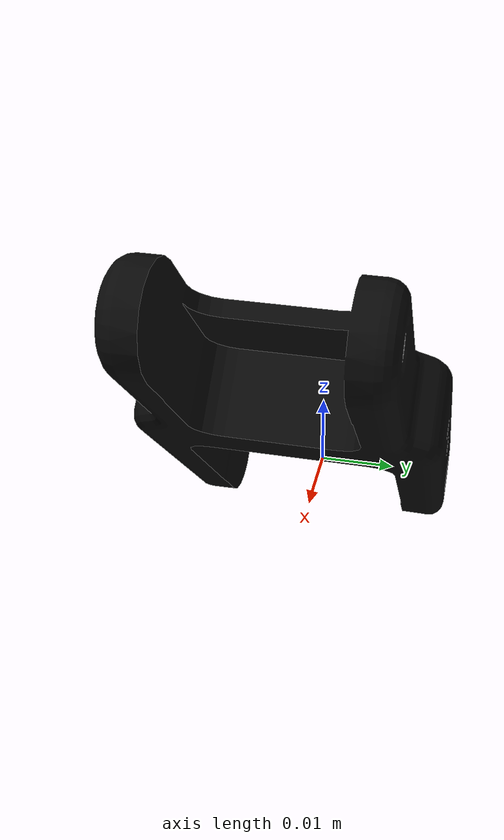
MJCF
<mujoco model="left_inner_knuckle">
  <default>
    <default class="visual">
      <geom group="2" type="mesh" contype="0" conaffinity="0"/>
    </default>
    <default class="collision">
      <geom group="3" type="mesh"/>
    </default>
  </default>
  <asset>
    <material name="material_left_inner_knuckle_0" specular="0.20000000000000004" shininess="1.0" rgba="0.03137255 0.03137255 0.03137255 1.0"/>
    <material name="material_left_inner_knuckle_1" specular="0.20000000000000004" shininess="1.0" rgba="0.80000000 0.80000000 0.80000000 1.0"/>
    <mesh file="left_inner_knuckle_0.obj"/>
    <mesh file="left_inner_knuckle_1.obj"/>
  </asset>
  <worldbody>
    <body name="left_inner_knuckle">
      <geom mesh="left_inner_knuckle_0" material="material_left_inner_knuckle_1" class="visual"/>
      <geom mesh="left_inner_knuckle_1" material="material_left_inner_knuckle_0" class="visual"/>
      <geom mesh="left_inner_knuckle_0" class="collision"/>
      <geom mesh="left_inner_knuckle_1" class="collision"/>
    </body>
  </worldbody>
</mujoco>
